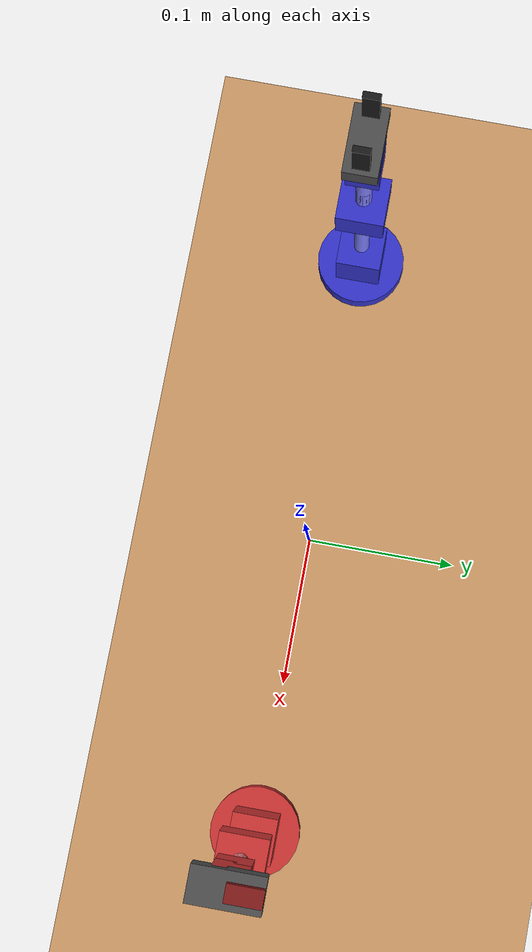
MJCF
<mujoco model="tinyarm_101">
    <compiler angle="degree" coordinate="local" inertiafromgeom="true"/>
    <option integrator="RK4" timestep="0.01"/>

    <default>
        <joint armature="1" damping="1" limited="true"/>
        <geom conaffinity="0" condim="3" density="5.0" friction="1 0.5 0.5" margin="0.001" rgba="0.8 0.6 0.4 1"/>
        <motor ctrllimited="true" ctrlrange="-1 1"/>
    </default>

    <asset>
        <texture type="skybox" builtin="gradient" rgb1="0.3 0.5 0.7" rgb2="0 0 0" width="512" height="512"/>
        <texture name="texplane" builtin="checker" rgb1=".2 .3 .4" rgb2=".1 .2 .3" type="2d" width="512" height="512"/>
        <material name="matplane" reflectance="0.3" texture="texplane" texrepeat="1 1" texuniform="true"/>
    </asset>

    <worldbody>
        <light directional="true" diffuse=".8 .8 .8" specular=".2 .2 .2" pos="0 0 5" dir="0 0 -1"/>
        <geom name="floor" pos="0 0 0" size="0 0 .25" type="plane" material="matplane"/>

        <!-- Follower Arm -->
        <body name="follower_base" pos="-0.2 0 0">
            <geom name="f_base_geom" type="cylinder" size="0.03 0.01" rgba="0.2 0.2 0.8 1"/>
            <joint name="f_joint1" type="hinge" axis="0 0 1" range="-170 170"/>

            <body name="f_shoulder" pos="0 0 0.02">
                <geom name="f_shoulder_geom" type="box" size="0.015 0.015 0.02" rgba="0.2 0.2 0.8 1"/>
                <joint name="f_joint2" type="hinge" axis="0 1 0" range="-90 90"/>

                <body name="f_upper_arm" pos="0 0 0.04">
                    <geom name="f_upper_arm_geom" type="cylinder" size="0.005 0.05" rgba="0.5 0.5 1 1" pos="0 0 0.025"/>
                    <body name="f_elbow" pos="0 0 0.05">
                        <geom name="f_elbow_geom" type="box" size="0.015 0.015 0.01" rgba="0.2 0.2 0.8 1"/>
                        <joint name="f_joint3" type="hinge" axis="0 1 0" range="-120 120"/>

                        <body name="f_forearm" pos="0 0 0.02">
                            <geom name="f_forearm_geom" type="cylinder" size="0.005 0.04" rgba="0.5 0.5 1 1" pos="0 0 0.02"/>
                            <body name="f_wrist" pos="0 0 0.04">
                                <geom name="f_wrist_geom" type="box" size="0.01 0.01 0.01" rgba="0.2 0.2 0.8 1"/>
                                <joint name="f_joint4" type="hinge" axis="0 1 0" range="-90 90"/>

                                <body name="f_wrist_roll" pos="0 0 0.015">
                                    <geom name="f_wrist_roll_geom" type="box" size="0.01 0.01 0.01" rgba="0.2 0.2 0.8 1"/>
                                    <joint name="f_joint5" type="hinge" axis="0 0 1" range="-170 170"/>

                                    <!-- Gripper -->
                                    <body name="f_gripper" pos="0 0 0.01">
                                        <geom name="f_gripper_palm" type="box" size="0.02 0.01 0.005" rgba="0.3 0.3 0.3 1"/>
                                        <body name="f_left_finger" pos="-0.015 0 0.01">
                                            <geom name="f_left_finger_geom" type="box" size="0.002 0.005 0.015" rgba="0.1 0.1 0.1 1"/>
                                            <joint name="f_joint6_l" type="hinge" axis="0 1 0" range="0 45"/>
                                        </body>
                                        <body name="f_right_finger" pos="0.015 0 0.01">
                                            <geom name="f_right_finger_geom" type="box" size="0.002 0.005 0.015" rgba="0.1 0.1 0.1 1"/>
                                            <joint name="f_joint6_r" type="hinge" axis="0 -1 0" range="0 45"/>
                                        </body>
                                    </body>
                                </body>
                            </body>
                        </body>
                    </body>
                </body>
            </body>
        </body>

        <!-- Leader Arm -->
        <body name="leader_base" pos="0.2 0 0">
            <geom name="l_base_geom" type="cylinder" size="0.03 0.01" rgba="0.8 0.2 0.2 1"/>
            <joint name="l_joint1" type="hinge" axis="0 0 1" range="-170 170"/>

            <body name="l_shoulder" pos="0 0 0.02">
                <geom name="l_shoulder_geom" type="box" size="0.015 0.015 0.02" rgba="0.8 0.2 0.2 1"/>
                <joint name="l_joint2" type="hinge" axis="0 1 0" range="-90 90"/>

                <body name="l_upper_arm" pos="0 0 0.04">
                    <geom name="l_upper_arm_geom" type="cylinder" size="0.005 0.05" rgba="1 0.5 0.5 1" pos="0 0 0.025"/>
                    <body name="l_elbow" pos="0 0 0.05">
                        <geom name="l_elbow_geom" type="box" size="0.015 0.015 0.01" rgba="0.8 0.2 0.2 1"/>
                        <joint name="l_joint3" type="hinge" axis="0 1 0" range="-120 120"/>

                        <body name="l_forearm" pos="0 0 0.02">
                            <geom name="l_forearm_geom" type="cylinder" size="0.005 0.04" rgba="1 0.5 0.5 1" pos="0 0 0.02"/>
                            <body name="l_wrist" pos="0 0 0.04">
                                <geom name="l_wrist_geom" type="box" size="0.01 0.01 0.01" rgba="0.8 0.2 0.2 1"/>
                                <joint name="l_joint4" type="hinge" axis="0 1 0" range="-90 90"/>

                                <body name="l_wrist_roll" pos="0 0 0.015">
                                    <geom name="l_wrist_roll_geom" type="box" size="0.01 0.01 0.01" rgba="0.8 0.2 0.2 1"/>
                                    <joint name="l_joint5" type="hinge" axis="0 0 1" range="-170 170"/>

                                    <!-- Trigger Mechanism -->
                                    <body name="l_trigger" pos="0 0 0.01">
                                        <geom name="l_handle" type="box" size="0.01 0.02 0.005" rgba="0.3 0.3 0.3 1"/>
                                        <body name="l_trigger_finger" pos="0 0.01 0.01">
                                            <geom name="l_trigger_geom" type="box" size="0.005 0.01 0.002" rgba="0.5 0.1 0.1 1"/>
                                            <joint name="l_joint6_trigger" type="hinge" axis="1 0 0" range="0 30"/>
                                        </body>
                                    </body>
                                </body>
                            </body>
                        </body>
                    </body>
                </body>
            </body>
        </body>
    </worldbody>

    <actuator>
        <!-- Follower Actuators -->
        <position name="f_motor1" joint="f_joint1" kp="10"/>
        <position name="f_motor2" joint="f_joint2" kp="10"/>
        <position name="f_motor3" joint="f_joint3" kp="10"/>
        <position name="f_motor4" joint="f_joint4" kp="10"/>
        <position name="f_motor5" joint="f_joint5" kp="10"/>
        <position name="f_motor6" joint="f_joint6_l" kp="5"/>
        <position name="f_motor7" joint="f_joint6_r" kp="5"/>

        <!-- Leader Actuators (for visualization or haptics) -->
        <position name="l_motor1" joint="l_joint1" kp="1"/>
        <position name="l_motor2" joint="l_joint2" kp="1"/>
        <position name="l_motor3" joint="l_joint3" kp="1"/>
        <position name="l_motor4" joint="l_joint4" kp="1"/>
        <position name="l_motor5" joint="l_joint5" kp="1"/>
        <position name="l_motor6" joint="l_joint6_trigger" kp="1"/>
    </actuator>
</mujoco>
